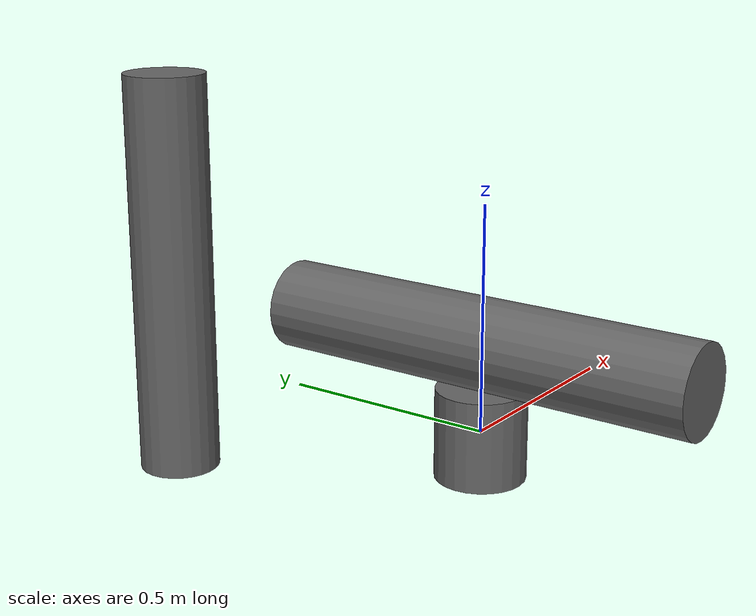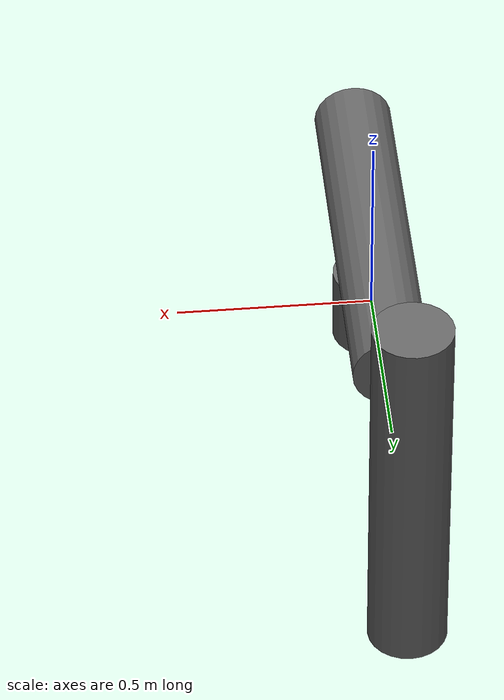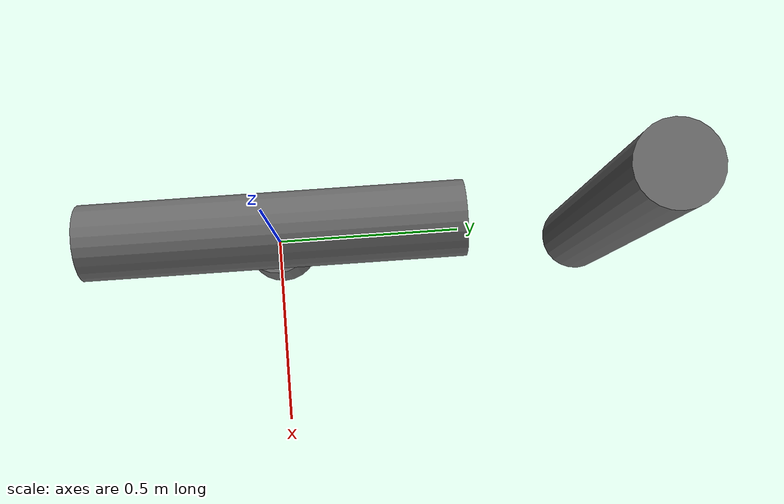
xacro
<?xml version="1.0"?>
<robot xmlns:xacro="http://www.ros.org/wiki/xacro" name="MinimalRobot">

  <xacro:include filename="robot_2dof/robot_2dof.urdf.xacro" />
  <xacro:include filename="robot_2dof/robot_2dof.gazebo.xacro" />
  <xacro:include filename="robot_2dof/robot_2dof.ros2_control.xacro" />
  <xacro:include filename="robot_2dof/robot_2dof.transmission.xacro" />

  <!-- Used for fixing robot -->
  <link name="world"/>
  <gazebo reference="world">
    <static>true</static>
  </gazebo>

  <xacro:robot_2dof parent="world" prefix="">
    <origin xyz="0 0 0" rpy="0 0 0" />
  </xacro:robot_2dof>

  <xacro:robot_2dof_gazebo prefix="" />

  <xacro:robot_2dof_ros2_control name="MinimalRobot" prefix="" />

  <xacro:robot_2dof_transmission prefix="" />

</robot>

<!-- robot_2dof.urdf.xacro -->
<robot xmlns:xacro="http://www.ros.org/wiki/xacro">

  <xacro:macro name="robot_2dof" params="parent prefix *origin">

    <joint name="${prefix}base_joint" type="fixed">
      <xacro:insert_block name="origin" />
      <parent link="${parent}"/>
      <child link="${prefix}base_link" />
    </joint>

    <link name="${prefix}base_link">
      <inertial>
        <mass value="0.01" />
        <origin xyz="0 0 0" />
        <inertia ixx="0.001" ixy="0.0" ixz="0.0" iyy="0.001" iyz="0.0" izz="0.001" />
      </inertial>
      <visual>
        <origin xyz="0 0 0" rpy="0 0 0" />
        <geometry>
          <cylinder radius="0.1" length="0.2" />
        </geometry>
        <material name="DarkGrey">
          <color rgba="0.4 0.4 0.4 1.0"/>
        </material>
      </visual>
      <collision>
        <origin xyz="0 0 0" rpy="0 0 0" />
        <geometry>
          <cylinder radius="0.1" length="1" />
        </geometry>
      </collision>
    </link>

    <joint name="${prefix}joint1" type="revolute">
      <origin xyz="0 0 0.2" rpy="${-pi/2} 0 0" />
      <parent link="${prefix}base_link"/>
      <child link="${prefix}link1" />
      <limit lower="${-pi}" upper="${pi}" effort="0.1" velocity="0.2" />
    </joint>

    <link name="${prefix}link1">
      <inertial>
        <mass value="0.01" />
        <origin xyz="0 0 0" />
        <inertia ixx="0.001" ixy="0.0" ixz="0.0" iyy="0.001" iyz="0.0" izz="0.001" />
      </inertial>
      <visual>
        <origin xyz="0 0 0" rpy="0 0 0" />
        <geometry>
          <cylinder radius="0.1" length="1" />
        </geometry>
        <material name="DarkGrey">
          <color rgba="0.4 0.4 0.4 1.0"/>
        </material>
      </visual>
      <collision>
        <origin xyz="0 0 0" rpy="0 0 0" />
        <geometry>
          <cylinder radius="0.1" length="1" />
        </geometry>
      </collision>
    </link>

    <joint name="${prefix}joint2" type="revolute">
      <origin xyz="0 0 0.9" rpy="${pi/2} 0 0" />
      <parent link="${prefix}link1"/>
      <child link="${prefix}link2" />
      <limit lower="${-pi}" upper="${pi}" effort="0.1" velocity="0.2" />
    </joint>

    <link name="${prefix}link2">
      <inertial>
        <mass value="0.01" />
        <origin xyz="0 0 0" />
        <inertia ixx="0.001" ixy="0.0" ixz="0.0" iyy="0.001" iyz="0.0" izz="0.001" />
      </inertial>
      <visual>
        <origin xyz="0 0 0" rpy="0 0 0" />
        <geometry>
          <cylinder radius="0.1" length="1" />
        </geometry>
        <material name="DarkGrey">
          <color rgba="0.4 0.4 0.4 1.0"/>
        </material>
      </visual>
      <collision>
        <origin xyz="0 0 0" rpy="0 0 0" />
        <geometry>
          <cylinder radius="0.1" length="1" />
        </geometry>
      </collision>
    </link>

    <joint name="${prefix}tool_joint" type="fixed">
      <origin xyz="0 0 1" rpy="0 0 0" />
      <parent link="${prefix}link2"/>
      <child link="${prefix}tool_link" />
    </joint>

    <link name="${prefix}tool_link">
    </link>

  </xacro:macro>

</robot>
